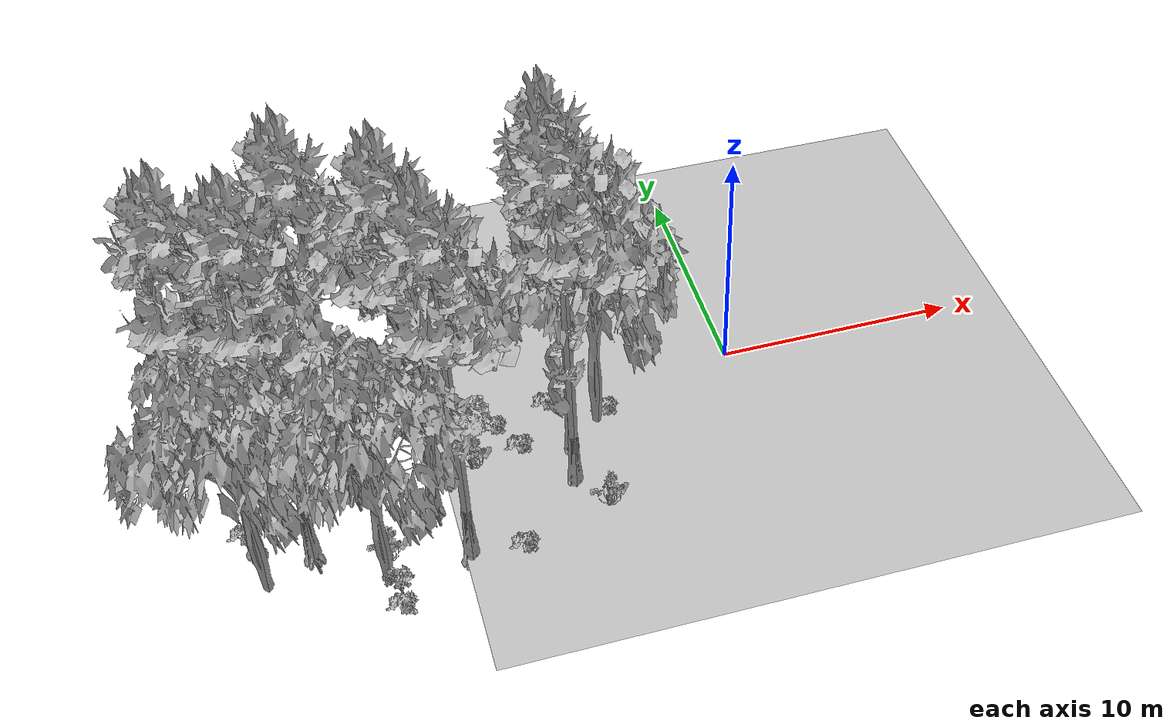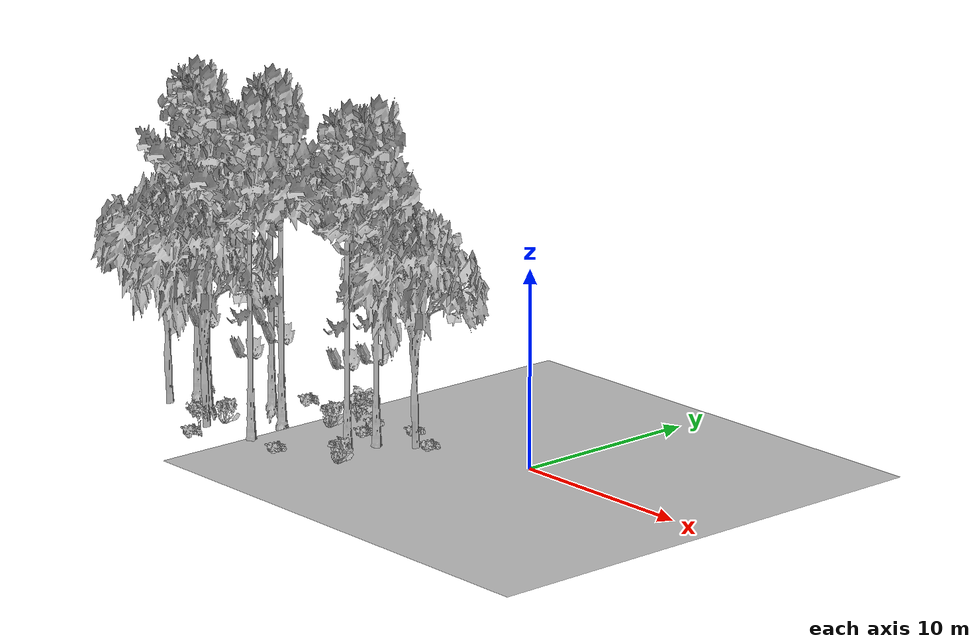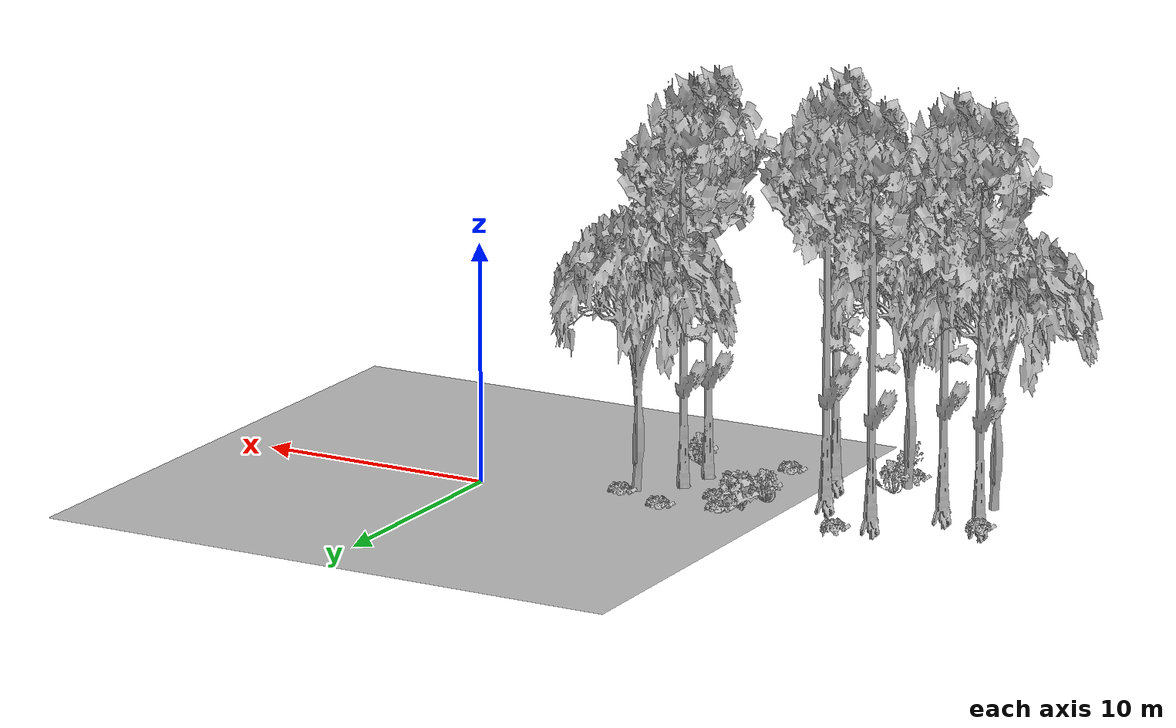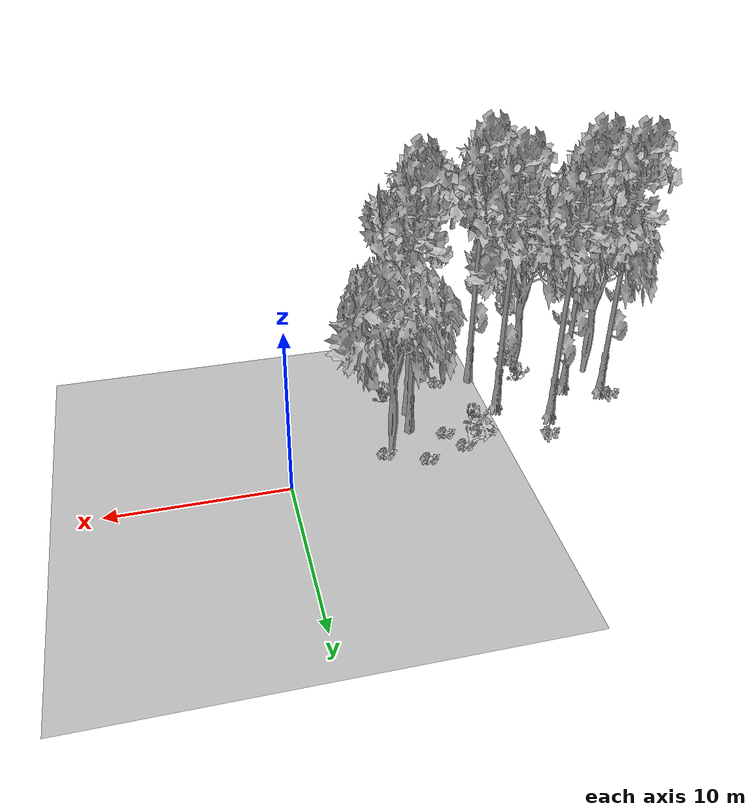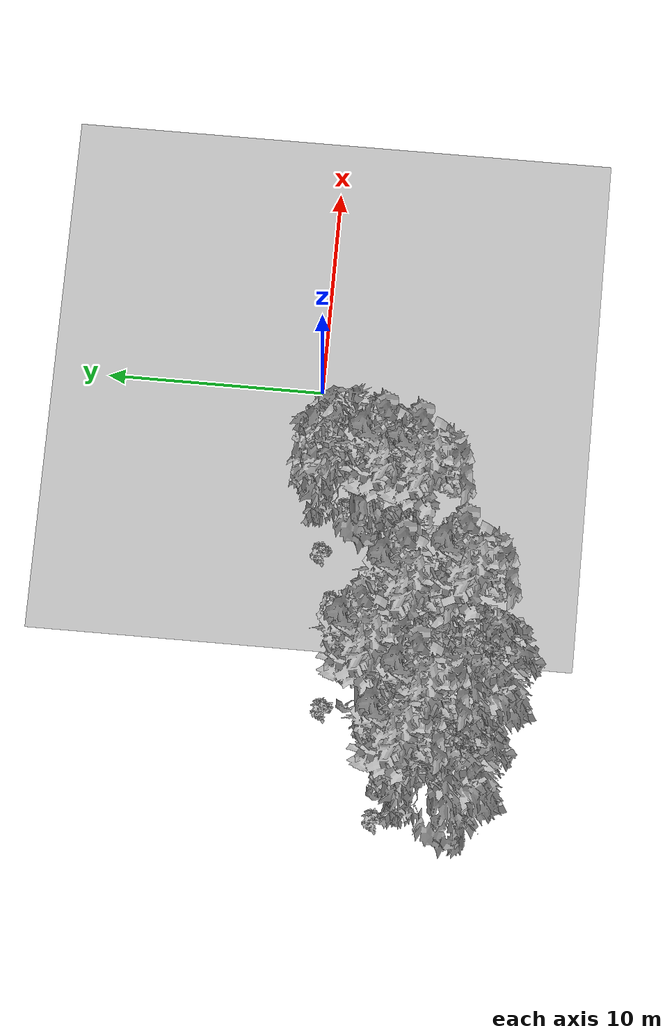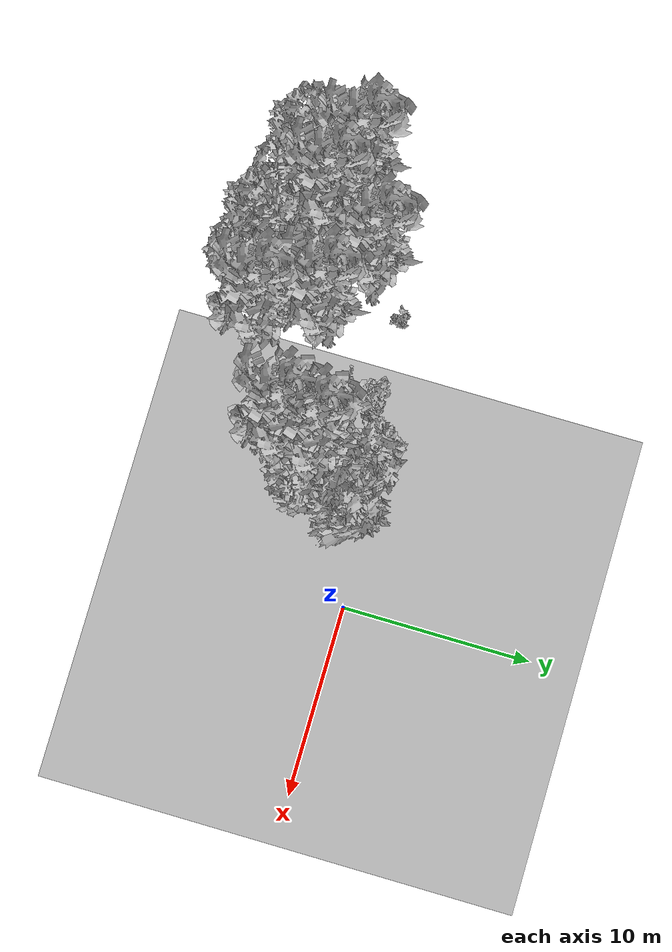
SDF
<sdf version="1.7">
 <world name="default">
  <model name="ground_plane">
   <static>1</static>
   <link name="link">
    <collision name="collision">
     <pose>-50 0 0 0 -0 0</pose>
     <geometry><plane><normal>0 0 1</normal><size>80 80</size></plane></geometry>
     <surface><contact><ode><min_depth>0.01</min_depth><max_vel>0</max_vel></ode></contact></surface>
    </collision>
    <visual name="grass">
     <cast_shadows>0</cast_shadows>
     <geometry>
      <mesh>
       <scale>0.46714285714285714 0.46714285714285714 0.1</scale>
       <uri>file://grass_plane/meshes/grass_plane.dae</uri>
      </mesh>
     </geometry>
    </visual>
   </link>
  </model>
  <model name="Tree 5">
   <static>1</static>
   <pose>-13.282032362530884 -4.6866800431014894 0 1.57079 -0 0</pose>
   <link name="link">
    <collision name="collision">
     <geometry><mesh><scale>3.5 5 3.5</scale><uri>model://tree_9/meshes/tree_9.obj</uri></mesh></geometry>
    </collision>
    <visual name="visual">
     <geometry><mesh><scale>3.5 5 3.5</scale><uri>model://tree_9/meshes/tree_9.obj</uri></mesh></geometry>
    </visual>
   </link>
  </model>
  <model name="Tree 75">
   <static>1</static>
   <pose>-7.772627824791339 -4.991182343657144 0 1.57079 -0 0</pose>
   <link name="link">
    <collision name="collision">
     <geometry><mesh><scale>3.5 5 3.5</scale><uri>model://tree_9/meshes/tree_9.obj</uri></mesh></geometry>
    </collision>
    <visual name="visual">
     <geometry><mesh><scale>3.5 5 3.5</scale><uri>model://tree_9/meshes/tree_9.obj</uri></mesh></geometry>
    </visual>
   </link>
  </model>
  <model name="Tree 117">
   <static>1</static>
   <pose>-15.599619828596186 -7.73658184128859 0 1.57079 -0 0</pose>
   <link name="link">
    <collision name="collision">
     <geometry><mesh><scale>3.5 5 3.5</scale><uri>model://tree_2/meshes/tree_2.obj</uri></mesh></geometry>
    </collision>
    <visual name="visual">
     <geometry><mesh><scale>3.5 5 3.5</scale><uri>model://tree_2/meshes/tree_2.obj</uri></mesh></geometry>
    </visual>
   </link>
  </model>
  <model name="Tree 205">
   <static>1</static>
   <pose>-6.1938402706662785 -2.058305469971714 0 1.57079 -0 0</pose>
   <link name="link">
    <collision name="collision">
     <geometry><mesh><scale>3.5 5 3.5</scale><uri>model://tree_2/meshes/tree_2.obj</uri></mesh></geometry>
    </collision>
    <visual name="visual">
     <geometry><mesh><scale>3.5 5 3.5</scale><uri>model://tree_2/meshes/tree_2.obj</uri></mesh></geometry>
    </visual>
   </link>
  </model>
  <model name="Tree 223">
   <static>1</static>
   <pose>-19.906338959185685 -6.767809723849545 0 1.57079 -0 0</pose>
   <link name="link">
    <collision name="collision">
     <geometry><mesh><scale>3.5 5 3.5</scale><uri>model://tree_2/meshes/tree_2.obj</uri></mesh></geometry>
    </collision>
    <visual name="visual">
     <geometry><mesh><scale>3.5 5 3.5</scale><uri>model://tree_2/meshes/tree_2.obj</uri></mesh></geometry>
    </visual>
   </link>
  </model>
  <model name="Tree 235">
   <static>1</static>
   <pose>-7.497588541345735 -3.377147099430971 0 1.57079 -0 0</pose>
   <link name="link">
    <collision name="collision">
     <geometry><mesh><scale>3.5 5 3.5</scale><uri>model://tree_9/meshes/tree_9.obj</uri></mesh></geometry>
    </collision>
    <visual name="visual">
     <geometry><mesh><scale>3.5 5 3.5</scale><uri>model://tree_9/meshes/tree_9.obj</uri></mesh></geometry>
    </visual>
   </link>
  </model>
  <model name="Tree 272">
   <static>1</static>
   <pose>-18.032220576168445 -5.663520215720119 0 1.57079 -0 0</pose>
   <link name="link">
    <collision name="collision">
     <geometry><mesh><scale>3.5 5 3.5</scale><uri>model://tree_9/meshes/tree_9.obj</uri></mesh></geometry>
    </collision>
    <visual name="visual">
     <geometry><mesh><scale>3.5 5 3.5</scale><uri>model://tree_9/meshes/tree_9.obj</uri></mesh></geometry>
    </visual>
   </link>
  </model>
  <model name="Tree 483">
   <static>1</static>
   <pose>-16.109241156467725 -3.077426696931404 0 1.57079 -0 0</pose>
   <link name="link">
    <collision name="collision">
     <geometry><mesh><scale>3.5 5 3.5</scale><uri>model://tree_9/meshes/tree_9.obj</uri></mesh></geometry>
    </collision>
    <visual name="visual">
     <geometry><mesh><scale>3.5 5 3.5</scale><uri>model://tree_9/meshes/tree_9.obj</uri></mesh></geometry>
    </visual>
   </link>
  </model>
  <model name="Tree 556">
   <static>1</static>
   <pose>-20.06601337600705 -4.762626903524392 0 1.57079 -0 0</pose>
   <link name="link">
    <collision name="collision">
     <geometry><mesh><scale>3.5 5 3.5</scale><uri>model://tree_9/meshes/tree_9.obj</uri></mesh></geometry>
    </collision>
    <visual name="visual">
     <geometry><mesh><scale>3.5 5 3.5</scale><uri>model://tree_9/meshes/tree_9.obj</uri></mesh></geometry>
    </visual>
   </link>
  </model>
  <model name="Tree 588">
   <static>1</static>
   <pose>-12.375014364419016 -7.351220710325265 0 1.57079 -0 0</pose>
   <link name="link">
    <collision name="collision">
     <geometry><mesh><scale>3.5 5 3.5</scale><uri>model://tree_9/meshes/tree_9.obj</uri></mesh></geometry>
    </collision>
    <visual name="visual">
     <geometry><mesh><scale>3.5 5 3.5</scale><uri>model://tree_9/meshes/tree_9.obj</uri></mesh></geometry>
    </visual>
   </link>
  </model>
  <model name="Bush 4">
   <static>1</static>
   <pose>-6.737898044813754 -6.475469118557584 0 1.57079 -0 0</pose>
   <link name="link">
    <collision name="collision">
     <geometry><mesh><scale>2 2 2</scale><uri>model://bush_4/meshes/bush_4.obj</uri></mesh></geometry>
     <surface><contact><collide_without_contact>false</collide_without_contact></contact></surface>
    </collision>
    <visual name="visual">
     <geometry><mesh><scale>2 2 2</scale><uri>model://bush_4/meshes/bush_4.obj</uri></mesh></geometry>
    </visual>
   </link>
  </model>
  <model name="Bush 22">
   <static>1</static>
   <pose>-15.169408925238056 -8.394827346229246 0 1.57079 -0 0</pose>
   <link name="link">
    <collision name="collision">
     <geometry><mesh><scale>2 2 2</scale><uri>model://bush_5/meshes/bush_5.obj</uri></mesh></geometry>
     <surface><contact><collide_without_contact>false</collide_without_contact></contact></surface>
    </collision>
    <visual name="visual">
     <geometry><mesh><scale>2 2 2</scale><uri>model://bush_5/meshes/bush_5.obj</uri></mesh></geometry>
    </visual>
   </link>
  </model>
  <model name="Bush 50">
   <static>1</static>
   <pose>-5.650340578579595 -1.5651372242043848 0 1.57079 -0 0</pose>
   <link name="link">
    <collision name="collision">
     <geometry><mesh><scale>2 2 2</scale><uri>model://bush_2/meshes/bush_2.obj</uri></mesh></geometry>
     <surface><contact><collide_without_contact>false</collide_without_contact></contact></surface>
    </collision>
    <visual name="visual">
     <geometry><mesh><scale>2 2 2</scale><uri>model://bush_2/meshes/bush_2.obj</uri></mesh></geometry>
    </visual>
   </link>
  </model>
  <model name="Bush 64">
   <static>1</static>
   <pose>-15.241566103676671 -8.928361871817081 0 1.57079 -0 0</pose>
   <link name="link">
    <collision name="collision">
     <geometry><mesh><scale>2 2 2</scale><uri>model://bush_2/meshes/bush_2.obj</uri></mesh></geometry>
     <surface><contact><collide_without_contact>false</collide_without_contact></contact></surface>
    </collision>
    <visual name="visual">
     <geometry><mesh><scale>2 2 2</scale><uri>model://bush_2/meshes/bush_2.obj</uri></mesh></geometry>
    </visual>
   </link>
  </model>
  <model name="Bush 114">
   <static>1</static>
   <pose>-9.439954908584593 -2.600031859671219 0 1.57079 -0 0</pose>
   <link name="link">
    <collision name="collision">
     <geometry><mesh><scale>2 2 2</scale><uri>model://bush_2/meshes/bush_2.obj</uri></mesh></geometry>
     <surface><contact><collide_without_contact>false</collide_without_contact></contact></surface>
    </collision>
    <visual name="visual">
     <geometry><mesh><scale>2 2 2</scale><uri>model://bush_2/meshes/bush_2.obj</uri></mesh></geometry>
    </visual>
   </link>
  </model>
  <model name="Bush 131">
   <static>1</static>
   <pose>-11.388753621524309 -3.189781639552514 0 1.57079 -0 0</pose>
   <link name="link">
    <collision name="collision">
     <geometry><mesh><scale>2 2 2</scale><uri>model://bush_4/meshes/bush_4.obj</uri></mesh></geometry>
     <surface><contact><collide_without_contact>false</collide_without_contact></contact></surface>
    </collision>
    <visual name="visual">
     <geometry><mesh><scale>2 2 2</scale><uri>model://bush_4/meshes/bush_4.obj</uri></mesh></geometry>
    </visual>
   </link>
  </model>
  <model name="Bush 153">
   <static>1</static>
   <pose>-11.10413283528938 -1.6452923792239886 0 1.57079 -0 0</pose>
   <link name="link">
    <collision name="collision">
     <geometry><mesh><scale>2 2 2</scale><uri>model://bush_1/meshes/bush_1.obj</uri></mesh></geometry>
     <surface><contact><collide_without_contact>false</collide_without_contact></contact></surface>
    </collision>
    <visual name="visual">
     <geometry><mesh><scale>2 2 2</scale><uri>model://bush_1/meshes/bush_1.obj</uri></mesh></geometry>
    </visual>
   </link>
  </model>
  <model name="Bush 396">
   <static>1</static>
   <pose>-20.44254584492171 -4.122659173484777 0 1.57079 -0 0</pose>
   <link name="link">
    <collision name="collision">
     <geometry><mesh><scale>2 2 2</scale><uri>model://bush_2/meshes/bush_2.obj</uri></mesh></geometry>
     <surface><contact><collide_without_contact>false</collide_without_contact></contact></surface>
    </collision>
    <visual name="visual">
     <geometry><mesh><scale>2 2 2</scale><uri>model://bush_2/meshes/bush_2.obj</uri></mesh></geometry>
    </visual>
   </link>
  </model>
  <model name="Bush 430">
   <static>1</static>
   <pose>-10.347974048024508 -7.462681273703701 0 1.57079 -0 0</pose>
   <link name="link">
    <collision name="collision">
     <geometry><mesh><scale>2 2 2</scale><uri>model://bush_2/meshes/bush_2.obj</uri></mesh></geometry>
     <surface><contact><collide_without_contact>false</collide_without_contact></contact></surface>
    </collision>
    <visual name="visual">
     <geometry><mesh><scale>2 2 2</scale><uri>model://bush_2/meshes/bush_2.obj</uri></mesh></geometry>
    </visual>
   </link>
  </model>
  <model name="Bush 506">
   <static>1</static>
   <pose>-15.406399110293993 -1.3341394639185893 0 1.57079 -0 0</pose>
   <link name="link">
    <collision name="collision">
     <geometry><mesh><scale>2 2 2</scale><uri>model://bush_2/meshes/bush_2.obj</uri></mesh></geometry>
     <surface><contact><collide_without_contact>false</collide_without_contact></contact></surface>
    </collision>
    <visual name="visual">
     <geometry><mesh><scale>2 2 2</scale><uri>model://bush_2/meshes/bush_2.obj</uri></mesh></geometry>
    </visual>
   </link>
  </model>
  <model name="Bush 536">
   <static>1</static>
   <pose>-15.311908266172573 -6.746090439170651 0 1.57079 -0 0</pose>
   <link name="link">
    <collision name="collision">
     <geometry><mesh><scale>2 2 2</scale><uri>model://bush_4/meshes/bush_4.obj</uri></mesh></geometry>
     <surface><contact><collide_without_contact>false</collide_without_contact></contact></surface>
    </collision>
    <visual name="visual">
     <geometry><mesh><scale>2 2 2</scale><uri>model://bush_4/meshes/bush_4.obj</uri></mesh></geometry>
    </visual>
   </link>
  </model>
  <model name="Bush 567">
   <static>1</static>
   <pose>-10.22963386660064 -1.3201155099588817 0 1.57079 -0 0</pose>
   <link name="link">
    <collision name="collision">
     <geometry><mesh><scale>2 2 2</scale><uri>model://bush_2/meshes/bush_2.obj</uri></mesh></geometry>
     <surface><contact><collide_without_contact>false</collide_without_contact></contact></surface>
    </collision>
    <visual name="visual">
     <geometry><mesh><scale>2 2 2</scale><uri>model://bush_2/meshes/bush_2.obj</uri></mesh></geometry>
    </visual>
   </link>
  </model>
  <model name="Bush 578">
   <static>1</static>
   <pose>-7.89831571353907 -0.6243840241944483 0 1.57079 -0 0</pose>
   <link name="link">
    <collision name="collision">
     <geometry><mesh><scale>2 2 2</scale><uri>model://bush_2/meshes/bush_2.obj</uri></mesh></geometry>
     <surface><contact><collide_without_contact>false</collide_without_contact></contact></surface>
    </collision>
    <visual name="visual">
     <geometry><mesh><scale>2 2 2</scale><uri>model://bush_2/meshes/bush_2.obj</uri></mesh></geometry>
    </visual>
   </link>
  </model>
 </world>
</sdf>
